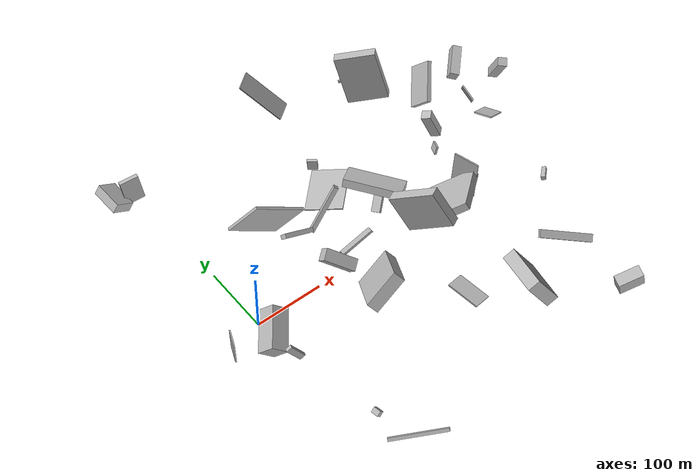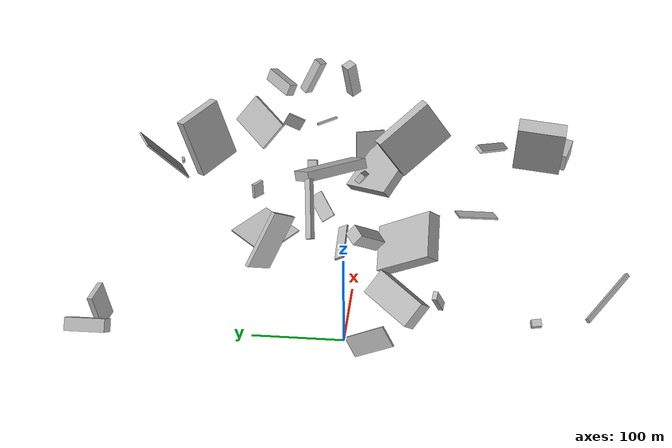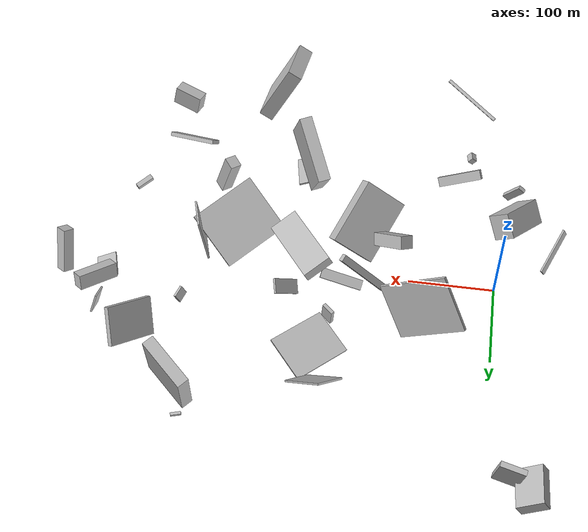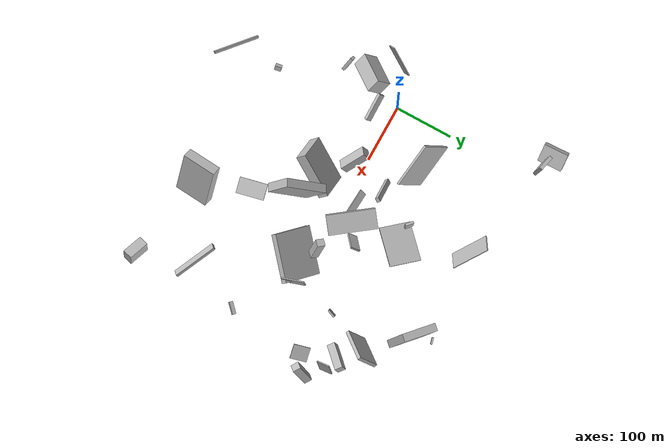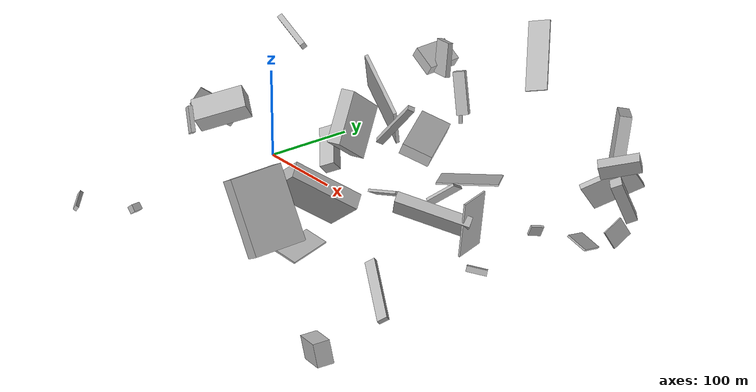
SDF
<sdf version="1.6">
 <world name="default">
  <scene>
   <sky><clouds><speed>12</speed></clouds></sky>
   <ambient>0.4 0.4 0.4 1</ambient>
   <background>0.7 0.7 0.7 1</background>
   <shadows>1</shadows>
  </scene>
  <gravity>0 0 -9.8066</gravity>
  <magnetic_field>6e-06 2.3e-05 -4.2e-05</magnetic_field>
  <physics default="0" name="default_physics" type="ode">
   <ode>
    <solver>
     <type>quick</type>
     <iters>10</iters>
     <sor>1.0</sor>
     <use_dynamic_moi_rescaling>0</use_dynamic_moi_rescaling>
    </solver>
    <constraints>
     <cfm>0</cfm>
     <erp>0.2</erp>
     <contact_max_correcting_vel>100</contact_max_correcting_vel>
     <contact_surface_layer>0.001</contact_surface_layer>
    </constraints>
   </ode>
   <max_step_size>0.004</max_step_size>
   <real_time_factor>1</real_time_factor>
   <real_time_update_rate>250</real_time_update_rate>
  </physics>
  <light name="sun" type="directional">
   <pose>0 0 10 0 0 0</pose>
   <diffuse>0.8 0.8 0.8 1</diffuse>
   <specular>0.2 0.2 0.2 1</specular>
   <attenuation>
    <range>1000</range>
    <constant>0.9</constant>
    <linear>0.01</linear>
    <quadratic>0.001</quadratic>
   </attenuation>
   <direction>-0.5 0.1 -0.9</direction>
  </light>
  <model name="building_1">
   <static>0</static>
   <pose>141.27500167725896 -90.09641809012001 51.07567005370361 2.2897462358562537 -0.6333523392453194 2.1688111462257735</pose>
   <link name="link">
    <gravity>0</gravity>
    <pose>0 0 40.0 0 0 0</pose>
    <collision name="collision"><geometry><box><size>18 56 80</size></box></geometry></collision>
    <visual name="visual">
     <cast_shadows>0</cast_shadows>
     <geometry><box><size>18 56 80</size></box></geometry>
     <material>
      <script>
       <uri>model://HANNAS_wall/materials/scripts</uri>
       <uri>model://HANNAS_wall/materials/textures</uri>
       <name>vrc/HANNAS_wall</name>
      </script>
     </material>
    </visual>
   </link>
  </model>
  <model name="building_2">
   <static>0</static>
   <pose>393.6697160507458 -154.85347326982827 43.71742601544406 2.5573320397138843 -0.879354474362557 -1.5906441120857797</pose>
   <link name="link">
    <gravity>0</gravity>
    <pose>0 0 5.5 0 0 0</pose>
    <collision name="collision"><geometry><box><size>5 78 11</size></box></geometry></collision>
    <visual name="visual">
     <cast_shadows>0</cast_shadows>
     <geometry><box><size>5 78 11</size></box></geometry>
     <material>
      <script>
       <uri>model://HANNAS_wall/materials/scripts</uri>
       <uri>model://HANNAS_wall/materials/textures</uri>
       <name>vrc/HANNAS_wall</name>
      </script>
     </material>
    </visual>
   </link>
  </model>
  <model name="building_3">
   <static>0</static>
   <pose>114.38560141657157 82.87491862785924 49.82155762212755 0.9792678237406018 0.27932647165121754 -1.9347976176846922</pose>
   <link name="link">
    <gravity>0</gravity>
    <pose>0 0 40.0 0 0 0</pose>
    <collision name="collision"><geometry><box><size>4 65 80</size></box></geometry></collision>
    <visual name="visual">
     <cast_shadows>0</cast_shadows>
     <geometry><box><size>4 65 80</size></box></geometry>
     <material>
      <script>
       <uri>model://HANNAS_wall/materials/scripts</uri>
       <uri>model://HANNAS_wall/materials/textures</uri>
       <name>vrc/HANNAS_wall</name>
      </script>
     </material>
    </visual>
   </link>
  </model>
  <model name="building_4">
   <static>0</static>
   <pose>304.948907588741 22.832544316983814 173.7828966440627 1.7278793395943546 -0.30197452934496266 -0.8545662360519695</pose>
   <link name="link">
    <gravity>0</gravity>
    <pose>0 0 6.0 0 0 0</pose>
    <collision name="collision"><geometry><box><size>13 44 12</size></box></geometry></collision>
    <visual name="visual">
     <cast_shadows>0</cast_shadows>
     <geometry><box><size>13 44 12</size></box></geometry>
     <material>
      <script>
       <uri>model://HANNAS_wall/materials/scripts</uri>
       <uri>model://HANNAS_wall/materials/textures</uri>
       <name>vrc/HANNAS_wall</name>
      </script>
     </material>
    </visual>
   </link>
  </model>
  <model name="building_5">
   <static>0</static>
   <pose>209.8684165642523 -34.4281604884676 112.86035662742056 0.06338371732315423 -0.9753790752666056 1.9967971041277055</pose>
   <link name="link">
    <gravity>0</gravity>
    <pose>0 0 36.5 0 0 0</pose>
    <collision name="collision"><geometry><box><size>56 14 73</size></box></geometry></collision>
    <visual name="visual">
     <cast_shadows>0</cast_shadows>
     <geometry><box><size>56 14 73</size></box></geometry>
     <material>
      <script>
       <uri>model://HANNAS_wall/materials/scripts</uri>
       <uri>model://HANNAS_wall/materials/textures</uri>
       <name>vrc/HANNAS_wall</name>
      </script>
     </material>
    </visual>
   </link>
  </model>
  <model name="building_6">
   <static>0</static>
   <pose>121.83682907317254 -8.345124381358202 50.01590726905737 0.6374920644781781 -0.410609903095406 0.6450823584140252</pose>
   <link name="link">
    <gravity>0</gravity>
    <pose>0 0 7.5 0 0 0</pose>
    <collision name="collision"><geometry><box><size>17 48 15</size></box></geometry></collision>
    <visual name="visual">
     <cast_shadows>0</cast_shadows>
     <geometry><box><size>17 48 15</size></box></geometry>
     <material>
      <script>
       <uri>model://HANNAS_wall/materials/scripts</uri>
       <uri>model://HANNAS_wall/materials/textures</uri>
       <name>vrc/HANNAS_wall</name>
      </script>
     </material>
    </visual>
   </link>
  </model>
  <model name="building_7">
   <static>0</static>
   <pose>239.8091083805537 -139.4529577148686 23.125353407323843 -0.2346824967854147 0.11366137601825867 -1.3695983772358897</pose>
   <link name="link">
    <gravity>0</gravity>
    <pose>0 0 1.0 0 0 0</pose>
    <collision name="collision"><geometry><box><size>48 27 2</size></box></geometry></collision>
    <visual name="visual">
     <cast_shadows>0</cast_shadows>
     <geometry><box><size>48 27 2</size></box></geometry>
     <material>
      <script>
       <uri>model://HANNAS_wall/materials/scripts</uri>
       <uri>model://HANNAS_wall/materials/textures</uri>
       <name>vrc/HANNAS_wall</name>
      </script>
     </material>
    </visual>
   </link>
  </model>
  <model name="building_8">
   <static>0</static>
   <pose>200.94452460275048 115.15969722115278 12.717281044960178 3.1080918008307092 0.23938542519394235 2.336910284277562</pose>
   <link name="link">
    <gravity>0</gravity>
    <pose>0 0 1.0 0 0 0</pose>
    <collision name="collision"><geometry><box><size>54 67 2</size></box></geometry></collision>
    <visual name="visual">
     <cast_shadows>0</cast_shadows>
     <geometry><box><size>54 67 2</size></box></geometry>
     <material>
      <script>
       <uri>model://HANNAS_wall/materials/scripts</uri>
       <uri>model://HANNAS_wall/materials/textures</uri>
       <name>vrc/HANNAS_wall</name>
      </script>
     </material>
    </visual>
   </link>
  </model>
  <model name="building_9">
   <static>0</static>
   <pose>248.9271076667862 58.59148786136564 38.192714287425034 2.4219029908121747 0.6834268322610308 -0.25856253561426196</pose>
   <link name="link">
    <gravity>0</gravity>
    <pose>0 0 17.5 0 0 0</pose>
    <collision name="collision"><geometry><box><size>3 17 35</size></box></geometry></collision>
    <visual name="visual">
     <cast_shadows>0</cast_shadows>
     <geometry><box><size>3 17 35</size></box></geometry>
     <material>
      <script>
       <uri>model://HANNAS_wall/materials/scripts</uri>
       <uri>model://HANNAS_wall/materials/textures</uri>
       <name>vrc/HANNAS_wall</name>
      </script>
     </material>
    </visual>
   </link>
  </model>
  <model name="building_10">
   <static>0</static>
   <pose>350.63319136131645 -19.18208474871585 48.73575272689025 1.5540584748668653 -0.10709996091813019 -2.8277299452285027</pose>
   <link name="link">
    <gravity>0</gravity>
    <pose>0 0 18.5 0 0 0</pose>
    <collision name="collision"><geometry><box><size>2 61 37</size></box></geometry></collision>
    <visual name="visual">
     <cast_shadows>0</cast_shadows>
     <geometry><box><size>2 61 37</size></box></geometry>
     <material>
      <script>
       <uri>model://HANNAS_wall/materials/scripts</uri>
       <uri>model://HANNAS_wall/materials/textures</uri>
       <name>vrc/HANNAS_wall</name>
      </script>
     </material>
    </visual>
   </link>
  </model>
  <model name="building_11">
   <static>0</static>
   <pose>428.25263186472 -63.684797178697565 49.66042672279773 1.2914406771692633 0.1900620386673132 0.7835285023477323</pose>
   <link name="link">
    <gravity>0</gravity>
    <pose>0 0 3.0 0 0 0</pose>
    <collision name="collision"><geometry><box><size>21 6 6</size></box></geometry></collision>
    <visual name="visual">
     <cast_shadows>0</cast_shadows>
     <geometry><box><size>21 6 6</size></box></geometry>
     <material>
      <script>
       <uri>model://HANNAS_wall/materials/scripts</uri>
       <uri>model://HANNAS_wall/materials/textures</uri>
       <name>vrc/HANNAS_wall</name>
      </script>
     </material>
    </visual>
   </link>
  </model>
  <model name="building_12">
   <static>0</static>
   <pose>245.07550321501557 4.520511254476599 87.32683315558582 -1.4513065684797548 -1.195621144271059 0.5317338207846108</pose>
   <link name="link">
    <gravity>0</gravity>
    <pose>0 0 40.0 0 0 0</pose>
    <collision name="collision"><geometry><box><size>12 33 80</size></box></geometry></collision>
    <visual name="visual">
     <cast_shadows>0</cast_shadows>
     <geometry><box><size>12 33 80</size></box></geometry>
     <material>
      <script>
       <uri>model://HANNAS_wall/materials/scripts</uri>
       <uri>model://HANNAS_wall/materials/textures</uri>
       <name>vrc/HANNAS_wall</name>
      </script>
     </material>
    </visual>
   </link>
  </model>
  <model name="building_13">
   <static>0</static>
   <pose>275.83301092567467 -45.65947803218057 60.33782447506508 2.0258117897565193 -0.8824164214961849 1.9358943082245295</pose>
   <link name="link">
    <gravity>0</gravity>
    <pose>0 0 40.0 0 0 0</pose>
    <collision name="collision"><geometry><box><size>11 71 80</size></box></geometry></collision>
    <visual name="visual">
     <cast_shadows>0</cast_shadows>
     <geometry><box><size>11 71 80</size></box></geometry>
     <material>
      <script>
       <uri>model://HANNAS_wall/materials/scripts</uri>
       <uri>model://HANNAS_wall/materials/textures</uri>
       <name>vrc/HANNAS_wall</name>
      </script>
     </material>
    </visual>
   </link>
  </model>
  <model name="building_14">
   <static>0</static>
   <pose>310.67538107349674 225.84685953933658 61.76265334203051 -1.3143749176549109 -0.12931016980930432 -2.2946113843579563</pose>
   <link name="link">
    <gravity>0</gravity>
    <pose>0 0 29.0 0 0 0</pose>
    <collision name="collision"><geometry><box><size>13 80 58</size></box></geometry></collision>
    <visual name="visual">
     <cast_shadows>0</cast_shadows>
     <geometry><box><size>13 80 58</size></box></geometry>
     <material>
      <script>
       <uri>model://HANNAS_wall/materials/scripts</uri>
       <uri>model://HANNAS_wall/materials/textures</uri>
       <name>vrc/HANNAS_wall</name>
      </script>
     </material>
    </visual>
   </link>
  </model>
  <model name="building_15">
   <static>0</static>
   <pose>325.27923694746835 239.6063226053559 41.097925289129044 -1.5056875414222894 0.19895524039588586 1.8408303752755144</pose>
   <link name="link">
    <gravity>0</gravity>
    <pose>0 0 5.5 0 0 0</pose>
    <collision name="collision"><geometry><box><size>3 4 11</size></box></geometry></collision>
    <visual name="visual">
     <cast_shadows>0</cast_shadows>
     <geometry><box><size>3 4 11</size></box></geometry>
     <material>
      <script>
       <uri>model://HANNAS_wall/materials/scripts</uri>
       <uri>model://HANNAS_wall/materials/textures</uri>
       <name>vrc/HANNAS_wall</name>
      </script>
     </material>
    </visual>
   </link>
  </model>
  <model name="building_16">
   <static>0</static>
   <pose>-19.312332091103404 260.1078428288289 42.758756763857804 1.4164762142974547 -0.12591939705714758 -0.18534350376649258</pose>
   <link name="link">
    <gravity>0</gravity>
    <pose>0 0 3.0 0 0 0</pose>
    <collision name="collision"><geometry><box><size>27 40 6</size></box></geometry></collision>
    <visual name="visual">
     <cast_shadows>0</cast_shadows>
     <geometry><box><size>27 40 6</size></box></geometry>
     <material>
      <script>
       <uri>model://HANNAS_wall/materials/scripts</uri>
       <uri>model://HANNAS_wall/materials/textures</uri>
       <name>vrc/HANNAS_wall</name>
      </script>
     </material>
    </visual>
   </link>
  </model>
  <model name="building_17">
   <static>0</static>
   <pose>440.6048155432126 64.8055896584991 47.45580439877767 2.8359692155834257 0.38967579687147325 0.18193316859163497</pose>
   <link name="link">
    <gravity>0</gravity>
    <pose>0 0 1.0 0 0 0</pose>
    <collision name="collision"><geometry><box><size>24 28 2</size></box></geometry></collision>
    <visual name="visual">
     <cast_shadows>0</cast_shadows>
     <geometry><box><size>24 28 2</size></box></geometry>
     <material>
      <script>
       <uri>model://HANNAS_wall/materials/scripts</uri>
       <uri>model://HANNAS_wall/materials/textures</uri>
       <name>vrc/HANNAS_wall</name>
      </script>
     </material>
    </visual>
   </link>
  </model>
  <model name="building_18">
   <static>0</static>
   <pose>12.781727935694555 -257.2232574939078 31.99469321116712 1.1700681395374413 -0.8839842019537213 1.2644249688532527</pose>
   <link name="link">
    <gravity>0</gravity>
    <pose>0 0 40.0 0 0 0</pose>
    <collision name="collision"><geometry><box><size>5 4 80</size></box></geometry></collision>
    <visual name="visual">
     <cast_shadows>0</cast_shadows>
     <geometry><box><size>5 4 80</size></box></geometry>
     <material>
      <script>
       <uri>model://HANNAS_wall/materials/scripts</uri>
       <uri>model://HANNAS_wall/materials/textures</uri>
       <name>vrc/HANNAS_wall</name>
      </script>
     </material>
    </visual>
   </link>
  </model>
  <model name="building_19">
   <static>0</static>
   <pose>151.40760465411967 56.76261107123039 72.49979802983353 0.7991347691746693 -0.8471669188252479 0.13035334693768755</pose>
   <link name="link">
    <gravity>0</gravity>
    <pose>0 0 4.0 0 0 0</pose>
    <collision name="collision"><geometry><box><size>70 6 8</size></box></geometry></collision>
    <visual name="visual">
     <cast_shadows>0</cast_shadows>
     <geometry><box><size>70 6 8</size></box></geometry>
     <material>
      <script>
       <uri>model://HANNAS_wall/materials/scripts</uri>
       <uri>model://HANNAS_wall/materials/textures</uri>
       <name>vrc/HANNAS_wall</name>
      </script>
     </material>
    </visual>
   </link>
  </model>
  <model name="building_20">
   <static>0</static>
   <pose>391.89930098358053 146.70391788531546 64.2871800516765 0.7744540892892563 -0.8695191837585202 -1.3226197006522418</pose>
   <link name="link">
    <gravity>0</gravity>
    <pose>0 0 3.0 0 0 0</pose>
    <collision name="collision"><geometry><box><size>42 57 6</size></box></geometry></collision>
    <visual name="visual">
     <cast_shadows>0</cast_shadows>
     <geometry><box><size>42 57 6</size></box></geometry>
     <material>
      <script>
       <uri>model://HANNAS_wall/materials/scripts</uri>
       <uri>model://HANNAS_wall/materials/textures</uri>
       <name>vrc/HANNAS_wall</name>
      </script>
     </material>
    </visual>
   </link>
  </model>
  <model name="building_21">
   <static>0</static>
   <pose>179.26682853718822 226.81209054331237 119.7983679596195 -0.8806423489701918 0.21868822424840556 -2.577009608646654</pose>
   <link name="link">
    <gravity>0</gravity>
    <pose>0 0 1.0 0 0 0</pose>
    <collision name="collision"><geometry><box><size>25 80 2</size></box></geometry></collision>
    <visual name="visual">
     <cast_shadows>0</cast_shadows>
     <geometry><box><size>25 80 2</size></box></geometry>
     <material>
      <script>
       <uri>model://HANNAS_wall/materials/scripts</uri>
       <uri>model://HANNAS_wall/materials/textures</uri>
       <name>vrc/HANNAS_wall</name>
      </script>
     </material>
    </visual>
   </link>
  </model>
  <model name="building_22">
   <static>0</static>
   <pose>299.30607168311803 -211.25849598142378 65.28471199022809 0.494202020575759 0.07345807842696644 -1.6566127664625727</pose>
   <link name="link">
    <gravity>0</gravity>
    <pose>0 0 40.0 0 0 0</pose>
    <collision name="collision"><geometry><box><size>57 18 80</size></box></geometry></collision>
    <visual name="visual">
     <cast_shadows>0</cast_shadows>
     <geometry><box><size>57 18 80</size></box></geometry>
     <material>
      <script>
       <uri>model://HANNAS_wall/materials/scripts</uri>
       <uri>model://HANNAS_wall/materials/textures</uri>
       <name>vrc/HANNAS_wall</name>
      </script>
     </material>
    </visual>
   </link>
  </model>
  <model name="building_23">
   <static>0</static>
   <pose>441.5967408140908 98.5286423099897 37.90101212609781 1.1085051559567236 0.2796130131092706 3.0417839072611437</pose>
   <link name="link">
    <gravity>0</gravity>
    <pose>0 0 12.0 0 0 0</pose>
    <collision name="collision"><geometry><box><size>2 21 24</size></box></geometry></collision>
    <visual name="visual">
     <cast_shadows>0</cast_shadows>
     <geometry><box><size>2 21 24</size></box></geometry>
     <material>
      <script>
       <uri>model://HANNAS_wall/materials/scripts</uri>
       <uri>model://HANNAS_wall/materials/textures</uri>
       <name>vrc/HANNAS_wall</name>
      </script>
     </material>
    </visual>
   </link>
  </model>
  <model name="building_24">
   <static>0</static>
   <pose>474.10366782525347 96.85264100904043 76.36115626584265 -0.3870466057129657 -0.22658368834984868 2.532963415421332</pose>
   <link name="link">
    <gravity>0</gravity>
    <pose>0 0 24.5 0 0 0</pose>
    <collision name="collision"><geometry><box><size>13 12 49</size></box></geometry></collision>
    <visual name="visual">
     <cast_shadows>0</cast_shadows>
     <geometry><box><size>13 12 49</size></box></geometry>
     <material>
      <script>
       <uri>model://HANNAS_wall/materials/scripts</uri>
       <uri>model://HANNAS_wall/materials/textures</uri>
       <name>vrc/HANNAS_wall</name>
      </script>
     </material>
    </visual>
   </link>
  </model>
  <model name="building_25">
   <static>0</static>
   <pose>-20.34179457405657 -48.45739181527269 55.26706076319559 0.3887513197067242 0.6618277569800393 -0.40877779283454746</pose>
   <link name="link">
    <gravity>0</gravity>
    <pose>0 0 14.5 0 0 0</pose>
    <collision name="collision"><geometry><box><size>26 58 29</size></box></geometry></collision>
    <visual name="visual">
     <cast_shadows>0</cast_shadows>
     <geometry><box><size>26 58 29</size></box></geometry>
     <material>
      <script>
       <uri>model://HANNAS_wall/materials/scripts</uri>
       <uri>model://HANNAS_wall/materials/textures</uri>
       <name>vrc/HANNAS_wall</name>
      </script>
     </material>
    </visual>
   </link>
  </model>
  <model name="building_26">
   <static>0</static>
   <pose>177.8107908221266 18.90293563998259 13.540548508330566 0.5315716661283699 0.3084376252931409 3.1290873020685566</pose>
   <link name="link">
    <gravity>0</gravity>
    <pose>0 0 1.5 0 0 0</pose>
    <collision name="collision"><geometry><box><size>50 12 3</size></box></geometry></collision>
    <visual name="visual">
     <cast_shadows>0</cast_shadows>
     <geometry><box><size>50 12 3</size></box></geometry>
     <material>
      <script>
       <uri>model://HANNAS_wall/materials/scripts</uri>
       <uri>model://HANNAS_wall/materials/textures</uri>
       <name>vrc/HANNAS_wall</name>
      </script>
     </material>
    </visual>
   </link>
  </model>
  <model name="building_27">
   <static>0</static>
   <pose>58.70432884902084 -11.751892299692237 170.33058111503178 -2.2249562863422994 -0.43036197900905615 3.1164382562248507</pose>
   <link name="link">
    <gravity>0</gravity>
    <pose>0 0 3.0 0 0 0</pose>
    <collision name="collision"><geometry><box><size>46 10 6</size></box></geometry></collision>
    <visual name="visual">
     <cast_shadows>0</cast_shadows>
     <geometry><box><size>46 10 6</size></box></geometry>
     <material>
      <script>
       <uri>model://HANNAS_wall/materials/scripts</uri>
       <uri>model://HANNAS_wall/materials/textures</uri>
       <name>vrc/HANNAS_wall</name>
      </script>
     </material>
    </visual>
   </link>
  </model>
  <model name="building_28">
   <static>0</static>
   <pose>425.9094198902706 125.9687989690113 100.69823663664613 -0.3010743812768276 0.22830942536841228 -2.3304097122964116</pose>
   <link name="link">
    <gravity>0</gravity>
    <pose>0 0 8.0 0 0 0</pose>
    <collision name="collision"><geometry><box><size>43 13 16</size></box></geometry></collision>
    <visual name="visual">
     <cast_shadows>0</cast_shadows>
     <geometry><box><size>43 13 16</size></box></geometry>
     <material>
      <script>
       <uri>model://HANNAS_wall/materials/scripts</uri>
       <uri>model://HANNAS_wall/materials/textures</uri>
       <name>vrc/HANNAS_wall</name>
      </script>
     </material>
    </visual>
   </link>
  </model>
  <model name="building_29">
   <static>0</static>
   <pose>-56.38587883722853 264.6224649949466 43.08473817544401 2.156070088120778 -0.0254993836015519 1.606233958141811</pose>
   <link name="link">
    <gravity>0</gravity>
    <pose>0 0 15.0 0 0 0</pose>
    <collision name="collision"><geometry><box><size>42 14 30</size></box></geometry></collision>
    <visual name="visual">
     <cast_shadows>0</cast_shadows>
     <geometry><box><size>42 14 30</size></box></geometry>
     <material>
      <script>
       <uri>model://HANNAS_wall/materials/scripts</uri>
       <uri>model://HANNAS_wall/materials/textures</uri>
       <name>vrc/HANNAS_wall</name>
      </script>
     </material>
    </visual>
   </link>
  </model>
  <model name="building_30">
   <static>0</static>
   <pose>417.88952517477367 -254.2380777792062 32.1482389980644 2.9298679894530353 -0.12243889141707381 1.303631376728498</pose>
   <link name="link">
    <gravity>0</gravity>
    <pose>0 0 12.0 0 0 0</pose>
    <collision name="collision"><geometry><box><size>17 36 24</size></box></geometry></collision>
    <visual name="visual">
     <cast_shadows>0</cast_shadows>
     <geometry><box><size>17 36 24</size></box></geometry>
     <material>
      <script>
       <uri>model://HANNAS_wall/materials/scripts</uri>
       <uri>model://HANNAS_wall/materials/textures</uri>
       <name>vrc/HANNAS_wall</name>
      </script>
     </material>
    </visual>
   </link>
  </model>
  <model name="building_31">
   <static>0</static>
   <pose>174.6571522489576 122.76971345284385 80.42710886162934 -1.5029611844396502 0.036946623551895444 -2.2814074381901004</pose>
   <link name="link">
    <gravity>0</gravity>
    <pose>0 0 7.0 0 0 0</pose>
    <collision name="collision"><geometry><box><size>4 18 14</size></box></geometry></collision>
    <visual name="visual">
     <cast_shadows>0</cast_shadows>
     <geometry><box><size>4 18 14</size></box></geometry>
     <material>
      <script>
       <uri>model://HANNAS_wall/materials/scripts</uri>
       <uri>model://HANNAS_wall/materials/textures</uri>
       <name>vrc/HANNAS_wall</name>
      </script>
     </material>
    </visual>
   </link>
  </model>
  <model name="building_32">
   <static>0</static>
   <pose>353.75779907515425 68.33485515819551 24.737293129370112 -2.1407365923018378 -1.1958327315285084 0.19717479647359012</pose>
   <link name="link">
    <gravity>0</gravity>
    <pose>0 0 7.0 0 0 0</pose>
    <collision name="collision"><geometry><box><size>12 3 14</size></box></geometry></collision>
    <visual name="visual">
     <cast_shadows>0</cast_shadows>
     <geometry><box><size>12 3 14</size></box></geometry>
     <material>
      <script>
       <uri>model://HANNAS_wall/materials/scripts</uri>
       <uri>model://HANNAS_wall/materials/textures</uri>
       <name>vrc/HANNAS_wall</name>
      </script>
     </material>
    </visual>
   </link>
  </model>
  <model name="building_33">
   <static>0</static>
   <pose>33.612759437745154 -206.24227487171362 6.380394603934199 0.8834925702218498 0.044329839997410476 1.7341036067013913</pose>
   <link name="link">
    <gravity>0</gravity>
    <pose>0 0 4.0 0 0 0</pose>
    <collision name="collision"><geometry><box><size>11 8 8</size></box></geometry></collision>
    <visual name="visual">
     <cast_shadows>0</cast_shadows>
     <geometry><box><size>11 8 8</size></box></geometry>
     <material>
      <script>
       <uri>model://HANNAS_wall/materials/scripts</uri>
       <uri>model://HANNAS_wall/materials/textures</uri>
       <name>vrc/HANNAS_wall</name>
      </script>
     </material>
    </visual>
   </link>
  </model>
  <model name="building_34">
   <static>0</static>
   <pose>-62.83479553368267 -31.235648607004318 44.380453563207766 -1.5717111223108362 0.9782049241098216 -2.045232285265282</pose>
   <link name="link">
    <gravity>0</gravity>
    <pose>0 0 1.0 0 0 0</pose>
    <collision name="collision"><geometry><box><size>23 54 2</size></box></geometry></collision>
    <visual name="visual">
     <cast_shadows>0</cast_shadows>
     <geometry><box><size>23 54 2</size></box></geometry>
     <material>
      <script>
       <uri>model://HANNAS_wall/materials/scripts</uri>
       <uri>model://HANNAS_wall/materials/textures</uri>
       <name>vrc/HANNAS_wall</name>
      </script>
     </material>
    </visual>
   </link>
  </model>
  <model name="building_35">
   <static>0</static>
   <pose>-15.582317450433228 -98.76307347078767 62.01754622649605 0.9422420545835705 0.1089540011586044 1.291874376944704</pose>
   <link name="link">
    <gravity>0</gravity>
    <pose>0 0 4.5 0 0 0</pose>
    <collision name="collision"><geometry><box><size>5 29 9</size></box></geometry></collision>
    <visual name="visual">
     <cast_shadows>0</cast_shadows>
     <geometry><box><size>5 29 9</size></box></geometry>
     <material>
      <script>
       <uri>model://HANNAS_wall/materials/scripts</uri>
       <uri>model://HANNAS_wall/materials/textures</uri>
       <name>vrc/HANNAS_wall</name>
      </script>
     </material>
    </visual>
   </link>
  </model>
 </world>
</sdf>
